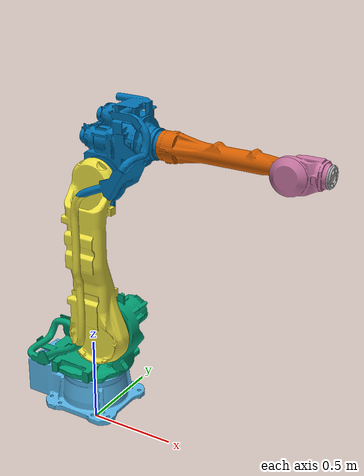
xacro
<?xml version="1.0" ?>
<robot name="scene" xmlns:xacro="http://ros.org/wiki/xacro" xmlns:tesseract="http://ros.org/wiki/tesseract" tesseract:make_convex="true">

    <!-- Global Origin -->
    <link name="world"/>

    <!-- Robot - Yaskawa Motoman MH50 -->
    <xacro:include filename="mh50.xacro"/>
    <joint name="fix_origin_mh50" type="fixed">
      <origin xyz="0 0 0.127" rpy="0 0 0"/>
      <parent link="world"/>
      <child link="base_link"/>
    </joint>

</robot>

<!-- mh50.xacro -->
<robot name="motoman_mh50" xmlns:xacro="http://ros.org/wiki/xacro" xmlns:tesseract="http://ros.org/wiki/tesseract">
    <xacro:include filename="$(find motoman_mh50_support)/urdf/mh50_macro.xacro" />
    <xacro:motoman_mh50 prefix=""/>
</robot>

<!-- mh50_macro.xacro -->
<robot xmlns:xacro="http://ros.org/wiki/xacro" xmlns:tesseract="http://ros.org/wiki/tesseract">
<xacro:macro name="motoman_mh50" params="prefix">
    <xacro:include filename="$(find motoman_resources)/urdf/common_materials.xacro"/>

    <!-- link list -->
    <link name="${prefix}base_link">
        <visual>
            <geometry>
                <mesh filename="package://motoman_mh50_support/meshes/visual/mh50_base_link.stl"/>
            </geometry>
            <xacro:material_yaskawa_blue/>
        </visual>
        <collision>
            <geometry>
                <mesh filename="package://motoman_mh50_support/meshes/collision/mh50_base_link.stl"/>
            </geometry>
        </collision>
    </link>
    <link name="${prefix}link_1_s">
        <visual>
            <geometry>
                <mesh filename="package://motoman_mh50_support/meshes/visual/mh50_link_1_s.stl"/>
            </geometry>
            <xacro:material_yaskawa_blue/>
        </visual>
        <collision>
            <geometry>
                <mesh filename="package://motoman_mh50_support/meshes/collision/mh50_link_1_s.stl"/>
            </geometry>
        </collision>
    </link>
    <link name="${prefix}link_2_l">
        <visual>
            <geometry>
                <mesh filename="package://motoman_mh50_support/meshes/visual/mh50_link_2_l.stl"/>
            </geometry>
            <xacro:material_yaskawa_blue/>
        </visual>
        <collision>
            <geometry>
                <mesh filename="package://motoman_mh50_support/meshes/collision/mh50_link_2_l.stl"/>
            </geometry>
        </collision>
    </link>
    <link name="${prefix}link_3_u">
        <visual>
            <geometry>
                <mesh filename="package://motoman_mh50_support/meshes/visual/mh50_link_3_u.stl"/>
            </geometry>
            <xacro:material_yaskawa_blue/>
        </visual>
        <collision>
            <geometry>
                <mesh filename="package://motoman_mh50_support/meshes/collision/mh50_link_3_u.stl"/>
            </geometry>
        </collision>
    </link>
    <link name="${prefix}link_4_r">
        <visual>
            <geometry>
                <mesh filename="package://motoman_mh50_support/meshes/visual/mh50_link_4_r.stl"/>
            </geometry>
            <xacro:material_yaskawa_blue/>
        </visual>
        <collision>
            <geometry>
                <mesh filename="package://motoman_mh50_support/meshes/collision/mh50_link_4_r.stl"/>
            </geometry>
        </collision>
    </link>
    <link name="${prefix}link_5_b">
        <visual>
            <geometry>
                <mesh filename="package://motoman_mh50_support/meshes/visual/mh50_link_5_b.stl"/>
            </geometry>
            <xacro:material_yaskawa_blue/>
        </visual>
        <collision>
            <geometry>
                <mesh filename="package://motoman_mh50_support/meshes/collision/mh50_link_5_b.stl"/>
            </geometry>
        </collision>
    </link>
    <link name="${prefix}link_6_t">
        <visual>
            <geometry>
                <mesh filename="package://motoman_mh50_support/meshes/visual/mh50_link_6_t.stl"/>
            </geometry>
            <xacro:material_yaskawa_blue/>
        </visual>
        <collision>
            <geometry>
                <mesh filename="package://motoman_mh50_support/meshes/collision/mh50_link_6_t.stl"/>
            </geometry>
        </collision>
    </link>
    <link name="${prefix}tool0"/>
    <!-- end of link list -->

    <!-- joint list -->
    <joint name="${prefix}joint_1_s" type="revolute">
        <parent link="${prefix}base_link"/>
        <child link="${prefix}link_1_s"/>
        <origin xyz="0 0 0.540" rpy="0 0 0" />
        <axis xyz="0 0 1" />
        <limit lower="-3.14159" upper="3.14159" effort="4903.32" velocity="3.141"/>
    </joint>
    <joint name="${prefix}joint_2_l" type="revolute">
        <parent link="${prefix}link_1_s"/>
        <child link="${prefix}link_2_l"/>
        <origin xyz="0.145 0 0" rpy="0 0 0" />
        <axis xyz="0 1 0" />
        <limit lower="-1.57079" upper="2.35619" effort="6276.26" velocity="3.103"/>
    </joint>
    <joint name="${prefix}joint_3_u" type="revolute">
        <parent link="${prefix}link_2_l"/>
        <child link="${prefix}link_3_u"/>
        <origin xyz="0 0 0.870" rpy="0 0 0" />
        <axis xyz="0 -1 0" />
        <limit lower="-1.39626" upper="3.59538" effort="2745.86" velocity="3.106"/>
    </joint>
    <joint name="${prefix}joint_4_r" type="revolute">
        <parent link="${prefix}link_3_u"/>
        <child link="${prefix}link_4_r"/>
        <origin xyz="1.025 0 0.210" rpy="0 0 0"/>
        <axis xyz="-1 0 0" />
        <limit lower="-6.28319" upper="6.28319" effort="823.76" velocity="4.363"/>
    </joint>
    <joint name="${prefix}joint_5_b" type="revolute">
        <parent link="${prefix}link_4_r"/>
        <child link="${prefix}link_5_b"/>
        <origin xyz="0 0 0" rpy="0 0 0" />
        <axis xyz="0 -1 0" />
        <limit lower="-2.18167" upper="2.18167" effort="706.08" velocity="4.363"/>
    </joint>
    <joint name="${prefix}joint_6_t" type="revolute">
        <parent link="${prefix}link_5_b"/>
        <child link="${prefix}link_6_t"/>
        <origin xyz="0 0 0" rpy="0 0 0" />
        <axis xyz="-1 0 0" />
        <limit lower="-6.2831" upper="6.2831" effort="333.43" velocity="6.283"/>
    </joint>
    <joint name="${prefix}joint_6_t-tool0" type="fixed">
        <origin xyz="0.175 0 0" rpy="3.1415926 -1.570796 0"/>
        <parent link="${prefix}link_6_t"/>
        <child link="${prefix}tool0"/>
    </joint>
    <!-- end of joint list -->

    <!-- ROS base_link to Robot Manufacturer World Coordinates transform -->
    <link name="${prefix}base" />
    <joint name="${prefix}base_link-base" type="fixed">
        <origin xyz="0 0 0.540" rpy="0 0 0"/>
        <parent link="${prefix}base_link"/>
        <child link="${prefix}base"/>
    </joint>

    </xacro:macro>
</robot>
